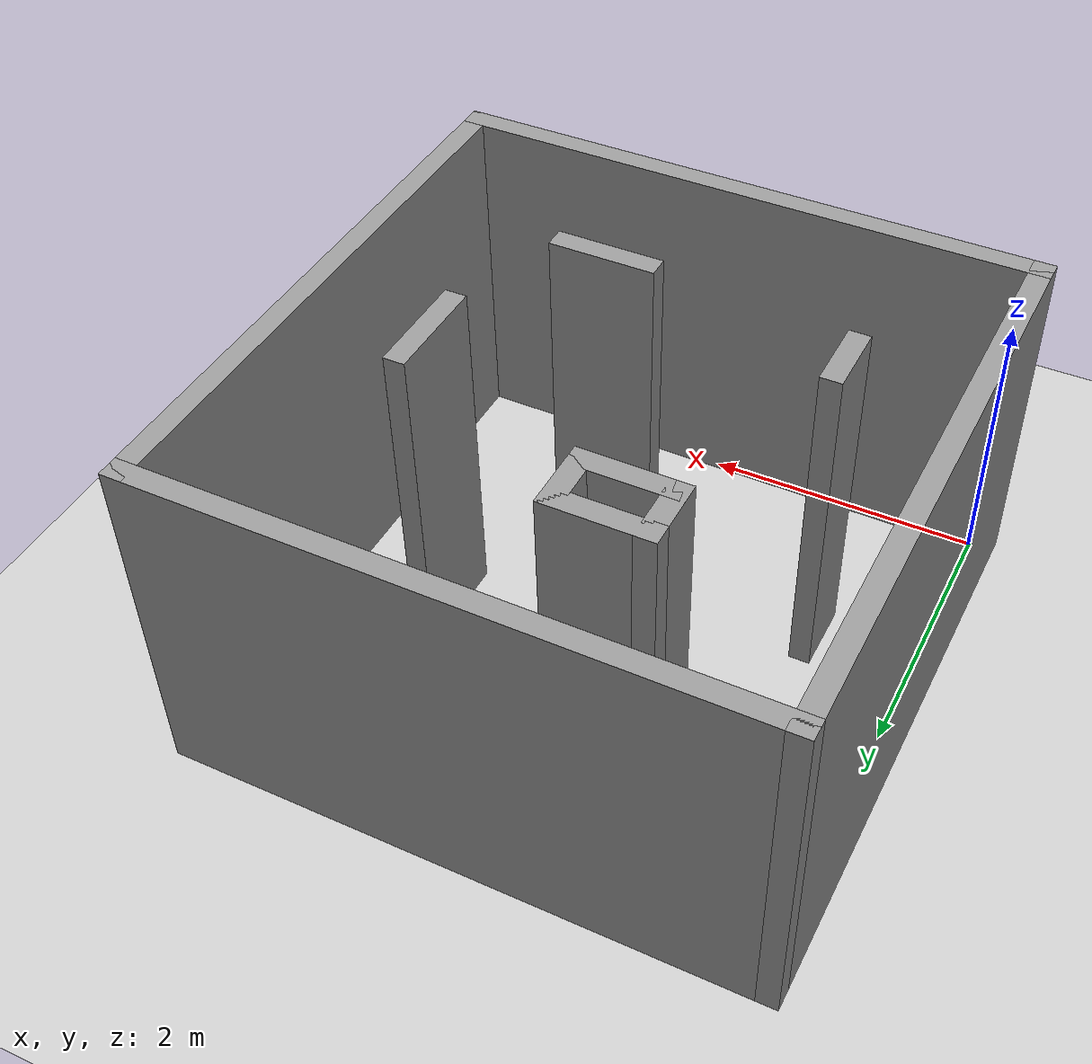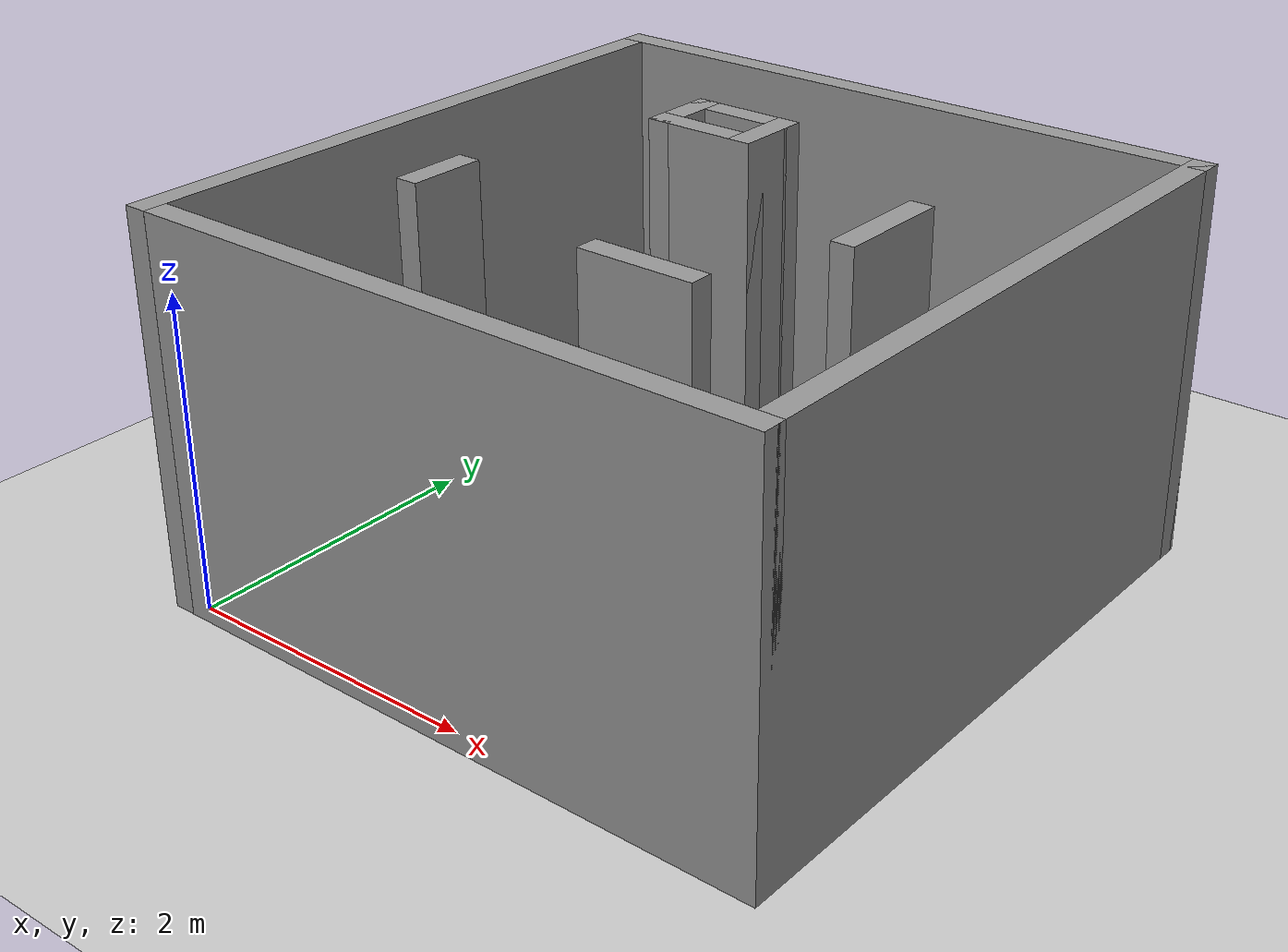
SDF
<sdf version="1.7">
 <world name="default">
  <light name="sun" type="directional">
   <pose>0 0 10 0 -0 0</pose>
   <diffuse>0.8 0.8 0.8 1</diffuse>
   <specular>0.2 0.2 0.2 1</specular>
   <attenuation>
    <range>1000</range>
    <constant>0.9</constant>
    <linear>0.01</linear>
    <quadratic>0.001</quadratic>
   </attenuation>
   <direction>-0.5 0.1 -0.9</direction>
   <spot><inner_angle>0</inner_angle><outer_angle>0</outer_angle><falloff>0</falloff></spot>
  </light>
  <model name="ground_plane">
   <static>1</static>
   <link name="link">
    <collision name="collision">
     <geometry><plane><normal>0 0 1</normal><size>100 100</size></plane></geometry>
     <surface><friction><ode><mu>100</mu><mu2>50</mu2></ode></friction></surface>
    </collision>
    <visual name="visual">
     <cast_shadows>0</cast_shadows>
     <geometry><plane><normal>0 0 1</normal><size>100 100</size></plane></geometry>
     <material>
      <script><uri>file://media/materials/scripts/gazebo.material</uri><name>Gazebo/Grey</name></script>
     </material>
    </visual>
   </link>
  </model>
  <gravity>0 0 -9.8</gravity>
  <magnetic_field>6e-06 2.3e-05 -4.2e-05</magnetic_field>
  <atmosphere type="adiabatic"/>
  <physics type="ode">
   <max_step_size>0.001</max_step_size>
   <real_time_factor>1</real_time_factor>
   <real_time_update_rate>1000</real_time_update_rate>
  </physics>
  <scene><ambient>0.4 0.4 0.4 1</ambient><background>0.7 0.7 0.7 1</background><shadows>1</shadows></scene>
  <audio><device>default</device></audio>
  <spherical_coordinates>
   <surface_model>EARTH_WGS84</surface_model>
   <latitude_deg>0</latitude_deg>
   <longitude_deg>0</longitude_deg>
   <elevation>0</elevation>
   <heading_deg>0</heading_deg>
  </spherical_coordinates>
  <model name="real_map">
   <pose>1.96372 2.01052 0 0 -0 1.56371</pose>
   <link name="Wall_14">
    <collision name="Wall_14_Collision">
     <geometry><box><size>0.75 0.15 2.5</size></box></geometry>
     <pose>0 0 1.25 0 -0 0</pose>
    </collision>
    <visual name="Wall_14_Visual">
     <pose>0 0 1.25 0 -0 0</pose>
     <geometry><box><size>0.75 0.15 2.5</size></box></geometry>
     <material>
      <script><uri>file://media/materials/scripts/gazebo.material</uri><name>Gazebo/Grey</name></script>
      <ambient>1 1 1 1</ambient>
     </material>
     <meta><layer>0</layer></meta>
    </visual>
    <pose>0.180435 -1.17174 0 0 -0 0</pose>
   </link>
   <link name="Wall_16">
    <collision name="Wall_16_Collision">
     <geometry><box><size>0.75 0.15 2.5</size></box></geometry>
     <pose>0 0 1.25 0 -0 0</pose>
    </collision>
    <visual name="Wall_16_Visual">
     <pose>0 0 1.25 0 -0 0</pose>
     <geometry><box><size>0.75 0.15 2.5</size></box></geometry>
     <material>
      <script><uri>file://media/materials/scripts/gazebo.material</uri><name>Gazebo/Grey</name></script>
      <ambient>1 1 1 1</ambient>
     </material>
     <meta><layer>0</layer></meta>
    </visual>
    <pose>-0.997826 -0.523913 0 0 -0 -1.5708</pose>
   </link>
   <link name="Wall_24">
    <collision name="Wall_24_Collision">
     <geometry><box><size>0.5 0.15 2.5</size></box></geometry>
     <pose>0 0 1.25 0 -0 0</pose>
    </collision>
    <visual name="Wall_24_Visual">
     <pose>0 0 1.25 0 -0 0</pose>
     <geometry><box><size>0.5 0.15 2.5</size></box></geometry>
     <material>
      <script><uri>file://media/materials/scripts/gazebo.material</uri><name>Gazebo/Grey</name></script>
      <ambient>1 1 1 1</ambient>
     </material>
     <meta><layer>0</layer></meta>
    </visual>
    <pose>-0.675 1.23696 0 0 -0 0</pose>
   </link>
   <link name="Wall_26">
    <collision name="Wall_26_Collision">
     <geometry><box><size>0.75 0.15 2.5</size></box></geometry>
     <pose>0 0 1.25 0 -0 0</pose>
    </collision>
    <visual name="Wall_26_Visual">
     <pose>0 0 1.25 0 -0 0</pose>
     <geometry><box><size>0.75 0.15 2.5</size></box></geometry>
     <material>
      <script><uri>file://media/materials/scripts/gazebo.material</uri><name>Gazebo/Grey</name></script>
      <ambient>1 1 1 1</ambient>
     </material>
     <meta><layer>0</layer></meta>
    </visual>
    <pose>0.828261 0.519565 0 0 -0 -1.5708</pose>
   </link>
   <link name="Wall_27">
    <collision name="Wall_27_Collision">
     <geometry><box><size>0.5 0.15 2.5</size></box></geometry>
     <pose>0 0 1.25 0 -0 0</pose>
    </collision>
    <visual name="Wall_27_Visual">
     <pose>0 0 1.25 0 -0 0</pose>
     <geometry><box><size>0.5 0.15 2.5</size></box></geometry>
     <material>
      <script><uri>file://media/materials/scripts/gazebo.material</uri><name>Gazebo/Grey</name></script>
      <ambient>1 1 1 1</ambient>
     </material>
     <meta><layer>0</layer></meta>
    </visual>
    <pose>1.00326 0.219565 0 0 -0 0</pose>
   </link>
   <link name="Wall_28">
    <collision name="Wall_28_Collision">
     <geometry><box><size>0.75 0.15 2.5</size></box></geometry>
     <pose>0 0 1.25 0 -0 0</pose>
    </collision>
    <visual name="Wall_28_Visual">
     <pose>0 0 1.25 0 -0 0</pose>
     <geometry><box><size>0.75 0.15 2.5</size></box></geometry>
     <material>
      <script><uri>file://media/materials/scripts/gazebo.material</uri><name>Gazebo/Grey</name></script>
      <ambient>1 1 1 1</ambient>
     </material>
     <meta><layer>0</layer></meta>
    </visual>
    <pose>1.17826 0.519565 0 0 -0 1.5708</pose>
   </link>
   <link name="Wall_29">
    <collision name="Wall_29_Collision">
     <geometry><box><size>0.5 0.15 2.5</size></box></geometry>
     <pose>0 0 1.25 0 -0 0</pose>
    </collision>
    <visual name="Wall_29_Visual">
     <pose>0 0 1.25 0 -0 0</pose>
     <geometry><box><size>0.5 0.15 2.5</size></box></geometry>
     <material>
      <script><uri>file://media/materials/scripts/gazebo.material</uri><name>Gazebo/Grey</name></script>
      <ambient>1 1 1 1</ambient>
     </material>
     <meta><layer>0</layer></meta>
    </visual>
    <pose>1.00326 0.819565 0 0 -0 3.14159</pose>
   </link>
   <link name="Wall_5">
    <collision name="Wall_5_Collision">
     <geometry><box><size>4.25 0.15 2.5</size></box></geometry>
     <pose>0 0 1.25 0 -0 0</pose>
    </collision>
    <visual name="Wall_5_Visual">
     <pose>0 0 1.25 0 -0 0</pose>
     <geometry><box><size>4.25 0.15 2.5</size></box></geometry>
     <material>
      <script><uri>file://media/materials/scripts/gazebo.material</uri><name>Gazebo/Grey</name></script>
      <ambient>1 1 1 1</ambient>
     </material>
     <meta><layer>0</layer></meta>
    </visual>
    <pose>-0 -2.05 0 0 -0 0</pose>
   </link>
   <link name="Wall_6">
    <collision name="Wall_6_Collision">
     <geometry><box><size>4.25 0.15 2.5</size></box></geometry>
     <pose>0 0 1.25 0 -0 0</pose>
    </collision>
    <visual name="Wall_6_Visual">
     <pose>0 0 1.25 0 -0 0</pose>
     <geometry><box><size>4.25 0.15 2.5</size></box></geometry>
     <material>
      <script><uri>file://media/materials/scripts/gazebo.material</uri><name>Gazebo/Grey</name></script>
      <ambient>1 1 1 1</ambient>
     </material>
     <meta><layer>0</layer></meta>
    </visual>
    <pose>2.05 -0 0 0 -0 1.5708</pose>
   </link>
   <link name="Wall_7">
    <collision name="Wall_7_Collision">
     <geometry><box><size>4.25 0.15 2.5</size></box></geometry>
     <pose>0 0 1.25 0 -0 0</pose>
    </collision>
    <visual name="Wall_7_Visual">
     <pose>0 0 1.25 0 -0 0</pose>
     <geometry><box><size>4.25 0.15 2.5</size></box></geometry>
     <material>
      <script><uri>file://media/materials/scripts/gazebo.material</uri><name>Gazebo/Grey</name></script>
      <ambient>1 1 1 1</ambient>
     </material>
     <meta><layer>0</layer></meta>
    </visual>
    <pose>-0 2.05 0 0 -0 3.14159</pose>
   </link>
   <link name="Wall_8">
    <collision name="Wall_8_Collision">
     <geometry><box><size>4.25 0.15 2.5</size></box></geometry>
     <pose>0 0 1.25 0 -0 0</pose>
    </collision>
    <visual name="Wall_8_Visual">
     <pose>0 0 1.25 0 -0 0</pose>
     <geometry><box><size>4.25 0.15 2.5</size></box></geometry>
     <material>
      <script><uri>file://media/materials/scripts/gazebo.material</uri><name>Gazebo/Grey</name></script>
      <ambient>1 1 1 1</ambient>
     </material>
     <meta><layer>0</layer></meta>
    </visual>
    <pose>-2.05 -0 0 0 -0 -1.5708</pose>
   </link>
   <static>1</static>
  </model>
 </world>
</sdf>
